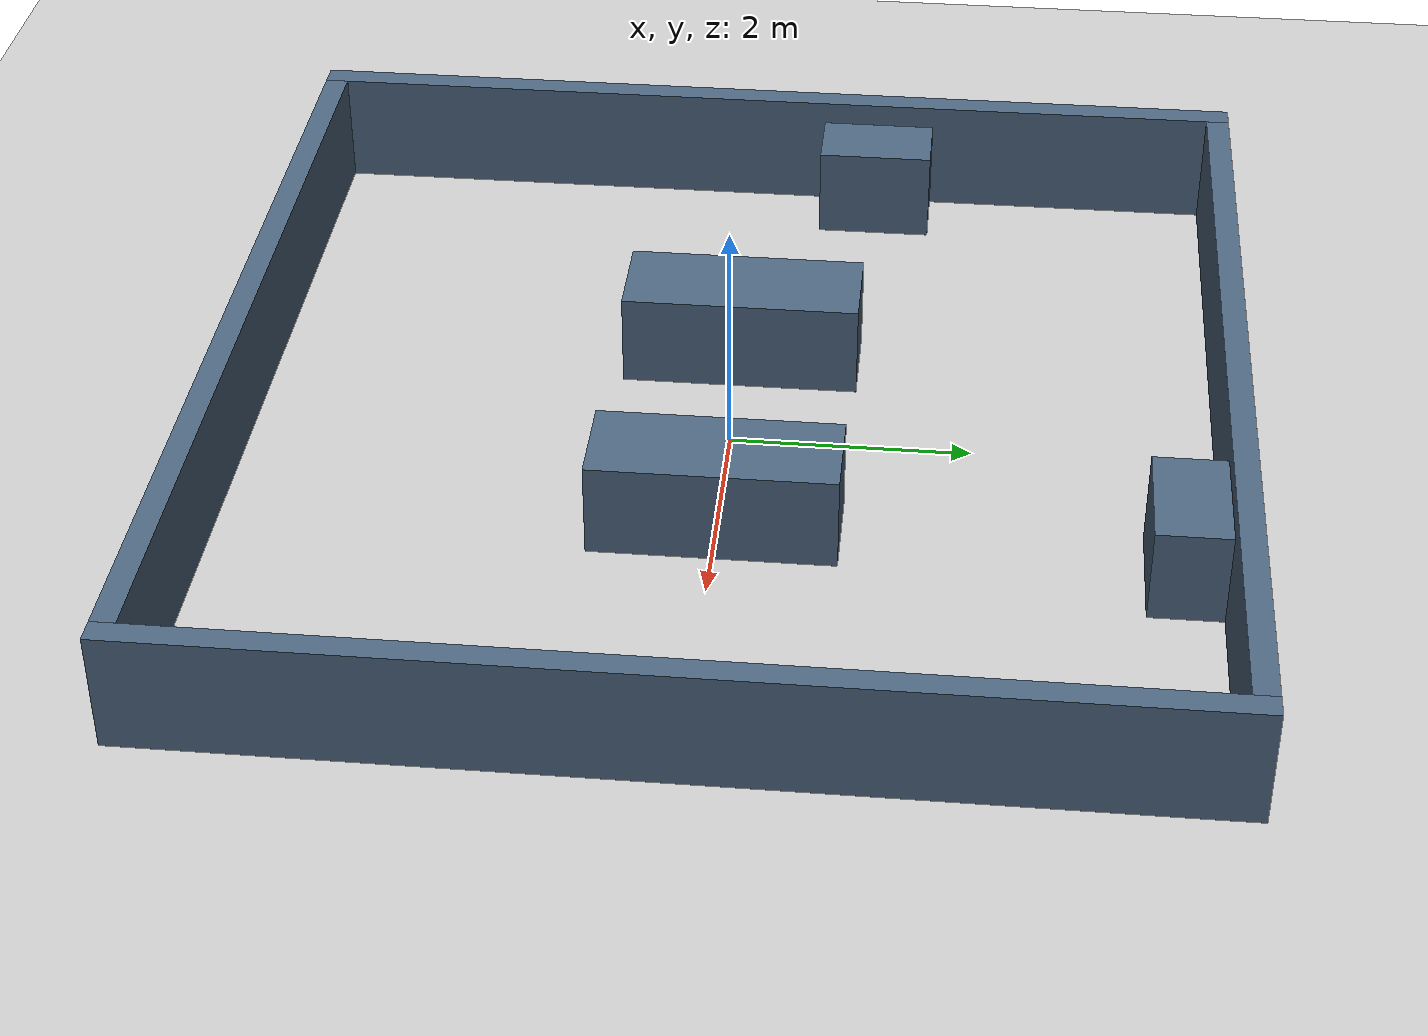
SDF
<?xml version="1.0"?><sdf version="1.6"><world name="lab">
<gravity>0 0 -9.81</gravity><physics type="ode"><max_step_size>0.001</max_step_size>
<real_time_update_rate>1000</real_time_update_rate></physics>
<model name="floor"><static>true</static><link name="floor">
<collision name="collision"><geometry><plane><normal>0 0 1</normal><size>30 30</size></plane></geometry></collision>
<visual name="visual"><geometry><plane><normal>0 0 1</normal><size>30 30</size></plane></geometry></visual>
</link></model><model name="fixture_0"><static>true</static><pose>-4.1 0.0 0.5 0 0 0</pose>
<link name="body"><collision name="collision"><geometry><box><size>0.2 8.4 1.0</size></box></geometry></collision>
<visual name="visual"><geometry><box><size>0.2 8.4 1.0</size></box></geometry>
<material><ambient>0.3 0.4 0.5 1</ambient></material></visual></link></model><model name="fixture_1"><static>true</static><pose>4.1 0.0 0.5 0 0 0</pose>
<link name="body"><collision name="collision"><geometry><box><size>0.2 8.4 1.0</size></box></geometry></collision>
<visual name="visual"><geometry><box><size>0.2 8.4 1.0</size></box></geometry>
<material><ambient>0.3 0.4 0.5 1</ambient></material></visual></link></model><model name="fixture_2"><static>true</static><pose>0.0 -4.1 0.5 0 0 0</pose>
<link name="body"><collision name="collision"><geometry><box><size>8.0 0.2 1.0</size></box></geometry></collision>
<visual name="visual"><geometry><box><size>8.0 0.2 1.0</size></box></geometry>
<material><ambient>0.3 0.4 0.5 1</ambient></material></visual></link></model><model name="fixture_3"><static>true</static><pose>0.0 4.1 0.5 0 0 0</pose>
<link name="body"><collision name="collision"><geometry><box><size>8.0 0.2 1.0</size></box></geometry></collision>
<visual name="visual"><geometry><box><size>8.0 0.2 1.0</size></box></geometry>
<material><ambient>0.3 0.4 0.5 1</ambient></material></visual></link></model><model name="fixture_4"><static>true</static><pose>-1.2 0.0 0.4 0 0 0</pose>
<link name="body"><collision name="collision"><geometry><box><size>0.8 2.0 0.8</size></box></geometry></collision>
<visual name="visual"><geometry><box><size>0.8 2.0 0.8</size></box></geometry>
<material><ambient>0.3 0.4 0.5 1</ambient></material></visual></link></model><model name="fixture_5"><static>true</static><pose>1.2 0.0 0.4 0 0 0</pose>
<link name="body"><collision name="collision"><geometry><box><size>0.8 2.0 0.8</size></box></geometry></collision>
<visual name="visual"><geometry><box><size>0.8 2.0 0.8</size></box></geometry>
<material><ambient>0.3 0.4 0.5 1</ambient></material></visual></link></model><model name="fixture_6"><static>true</static><pose>-3.7 1.0 0.4 0 0 0</pose>
<link name="body"><collision name="collision"><geometry><box><size>0.6 1.0 0.8</size></box></geometry></collision>
<visual name="visual"><geometry><box><size>0.6 1.0 0.8</size></box></geometry>
<material><ambient>0.3 0.4 0.5 1</ambient></material></visual></link></model><model name="fixture_7"><static>true</static><pose>1.5 3.7 0.4 0 0 0</pose>
<link name="body"><collision name="collision"><geometry><box><size>1.0 0.6 0.8</size></box></geometry></collision>
<visual name="visual"><geometry><box><size>1.0 0.6 0.8</size></box></geometry>
<material><ambient>0.3 0.4 0.5 1</ambient></material></visual></link></model></world></sdf>
